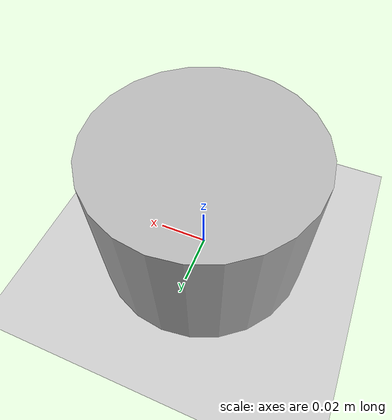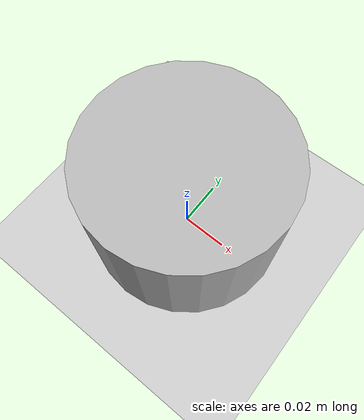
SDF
<?xml version="1.0" ?>
<sdf version="1.5">
  <world name="default">

    <!-- A global light source -->
    <include>
      <uri>model://sun</uri>
    </include>

    <!-- A ground plane -->
    <include>
      <uri>model://ground_plane</uri>
    </include>

    <model name="velodyne_hdl-32">
      <link name="base">
        <pose>0 0 0.029335 0 0 0</pose>
        <inertial>
          <mass>1.2</mass>
          <inertia>
            <ixx>0.001087473</ixx>
            <iyy>0.001087473</iyy>
            <izz>0.001092437</izz>
            <ixy>0</ixy>
            <ixz>0</ixz>
            <iyz>0</iyz>
          </inertia>
        </inertial>
        <collision name="base_collision">
          <geometry>
            <cylinder>
              <radius>.04267</radius>
              <length>.05867</length>
            </cylinder>
          </geometry>
        </collision>
        <visual name="base_visual">
          <geometry>
            <cylinder>
              <radius>.04267</radius>
              <length>.05867</length>
            </cylinder>
          </geometry>
        </visual>

      <sensor type="ray" name="sensor">
        <pose>0 0 -0.004645 0 0 0</pose>
        <visualize>true</visualize>
        <update_rate>30</update_rate>

        <ray>
          <scan>
            <horizontal>
              <samples>32</samples>
              <resolution>1</resolution>
              <min_angle>-0.53529248</min_angle>
              <max_angle>0.18622663</max_angle>
            </horizontal>
          </scan>
          <range>
            <min>0.05</min>
            <max>8</max>
            <resolution>0.02</resolution>
          </range>
        </ray>
      </sensor>

      </link>
    </model>

  </world>
</sdf>
